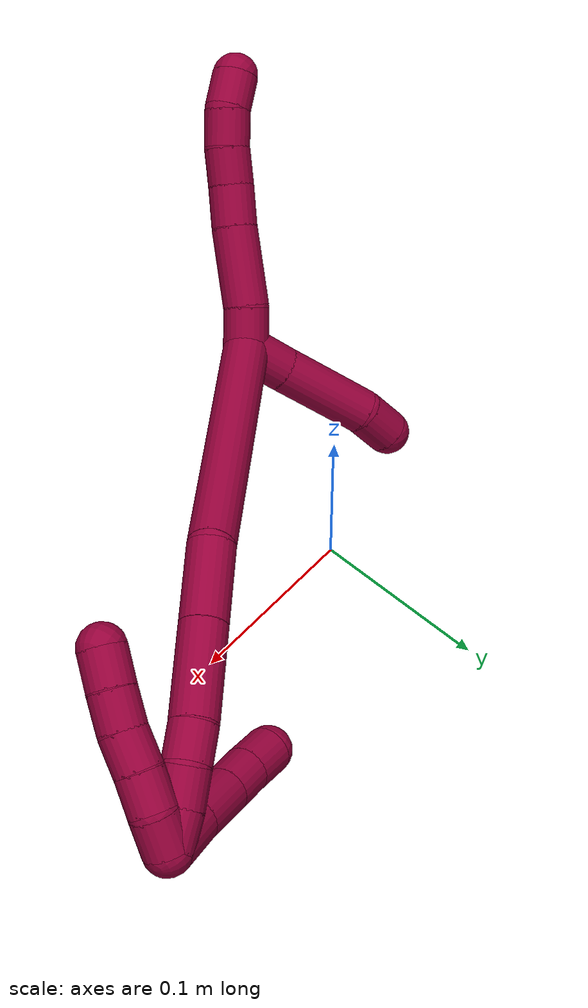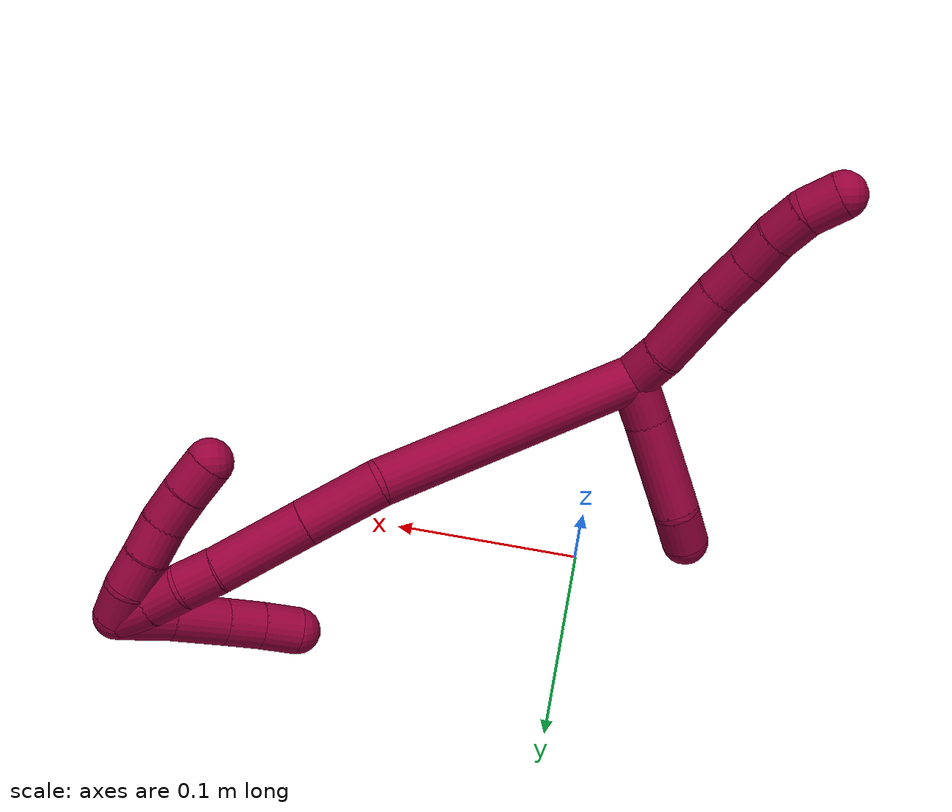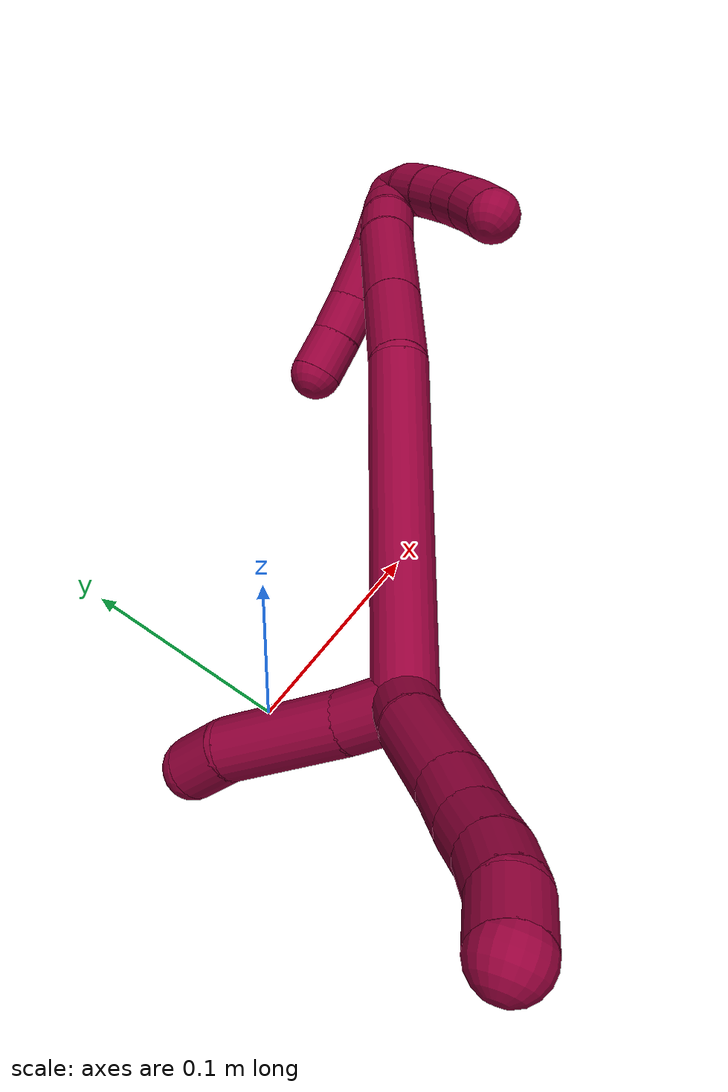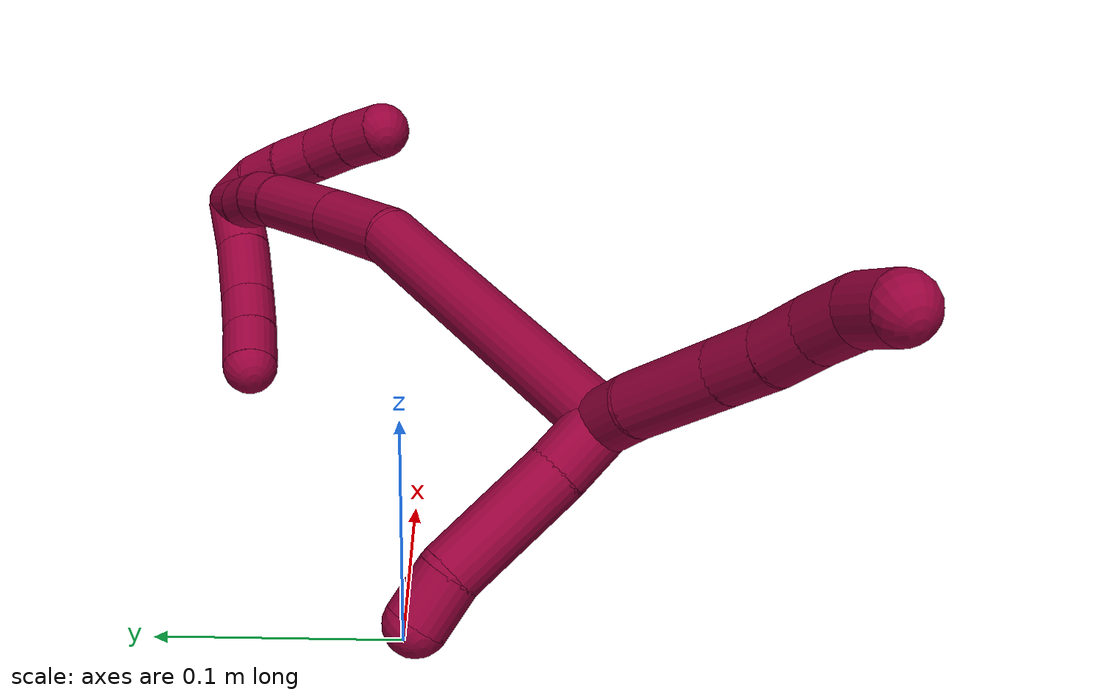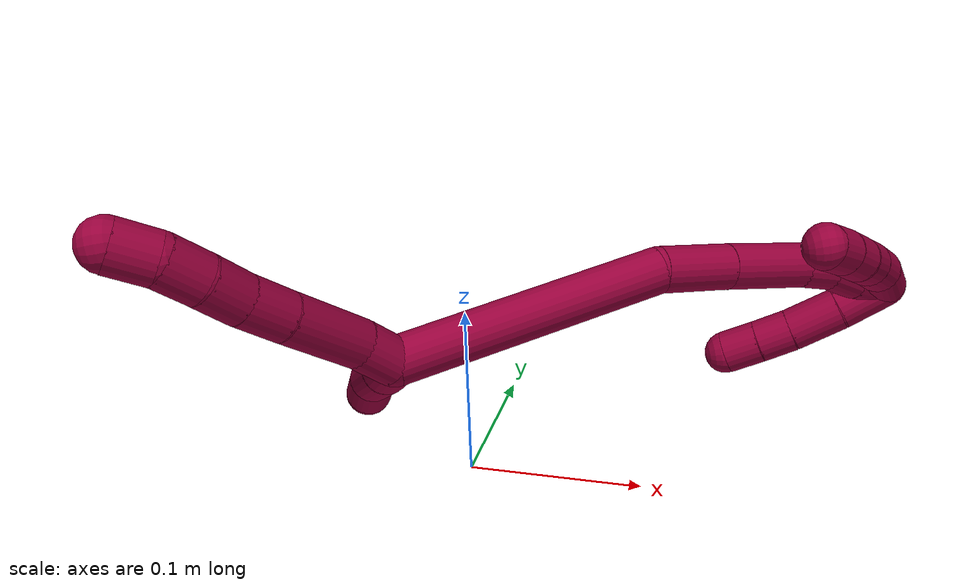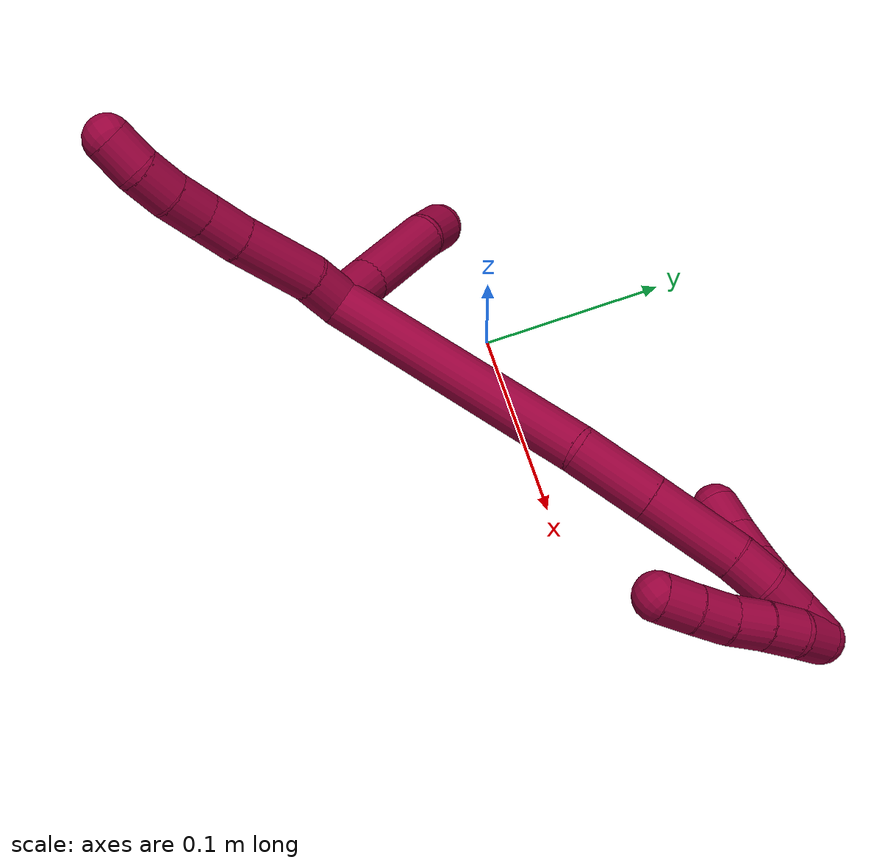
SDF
<sdf version="1.7">
 <world name="default">
  <model name="8">
   <static>0</static>
   <link name="8">
    <collision name="collision-cylinder-e_1_2_8">
     <pose>0.001063 -0.008929 0.006355 0.952268 0.096698 0.049896</pose>
     <geometry><cylinder><radius>0.0125</radius><length>0.022022</length></cylinder></geometry>
     <surface>
      <friction><ode><mu>1.16</mu><mu2>1.16</mu2><slip1>0</slip1><slip2>0</slip2></ode></friction>
      <contact><ode><kp>1e+06</kp><kd>1</kd><max_vel>0</max_vel><min_depth>0.001</min_depth></ode></contact>
     </surface>
    </collision>
    <visual name="visual-cylinder-e_1_2_8">
     <pose>0.001063 -0.008929 0.006355 0.952268 0.096698 0.049896</pose>
     <geometry><cylinder><radius>0.0125</radius><length>0.022022</length></cylinder></geometry>
     <material><ambient>0.584314 0 0.227451 1</ambient></material>
    </visual>
    <collision name="collision-cylinder-e_2_8_9">
     <pose>0.000674 -0.036049 0.024834 0.9829 -0.06634 -0.035518</pose>
     <geometry><cylinder><radius>0.0125</radius><length>0.043819</length></cylinder></geometry>
     <surface>
      <friction><ode><mu>1.16</mu><mu2>1.16</mu2><slip1>0</slip1><slip2>0</slip2></ode></friction>
      <contact><ode><kp>1e+06</kp><kd>1</kd><max_vel>0</max_vel><min_depth>0.001</min_depth></ode></contact>
     </surface>
    </collision>
    <visual name="visual-cylinder-e_2_8_9">
     <pose>0.000674 -0.036049 0.024834 0.9829 -0.06634 -0.035518</pose>
     <geometry><cylinder><radius>0.0125</radius><length>0.043819</length></cylinder></geometry>
     <material><ambient>0.584314 0 0.227451 1</ambient></material>
    </visual>
    <collision name="collision-cylinder-e_3_9_10">
     <pose>-0.000922 -0.063531 0.043638 0.947494 -0.012483 -0.0064</pose>
     <geometry><cylinder><radius>0.0125</radius><length>0.022886</length></cylinder></geometry>
     <surface>
      <friction><ode><mu>1.16</mu><mu2>1.16</mu2><slip1>0</slip1><slip2>0</slip2></ode></friction>
      <contact><ode><kp>1e+06</kp><kd>1</kd><max_vel>0</max_vel><min_depth>0.001</min_depth></ode></contact>
     </surface>
    </collision>
    <visual name="visual-cylinder-e_3_9_10">
     <pose>-0.000922 -0.063531 0.043638 0.947494 -0.012483 -0.0064</pose>
     <geometry><cylinder><radius>0.0125</radius><length>0.022886</length></cylinder></geometry>
     <material><ambient>0.584314 0 0.227451 1</ambient></material>
    </visual>
    <collision name="collision-cylinder-e_4_10_11">
     <pose>-0.000842 -0.081701 0.055603 1.03384 0.021559 0.012256</pose>
     <geometry><cylinder><radius>0.0125</radius><length>0.020673</length></cylinder></geometry>
     <surface>
      <friction><ode><mu>1.16</mu><mu2>1.16</mu2><slip1>0</slip1><slip2>0</slip2></ode></friction>
      <contact><ode><kp>1e+06</kp><kd>1</kd><max_vel>0</max_vel><min_depth>0.001</min_depth></ode></contact>
     </surface>
    </collision>
    <visual name="visual-cylinder-e_4_10_11">
     <pose>-0.000842 -0.081701 0.055603 1.03384 0.021559 0.012256</pose>
     <geometry><cylinder><radius>0.0125</radius><length>0.020673</length></cylinder></geometry>
     <material><ambient>0.584314 0 0.227451 1</ambient></material>
    </visual>
    <collision name="collision-cylinder-e_5_11_12">
     <pose>0.000266 -0.098712 0.067033 0.923654 0.086579 0.043113</pose>
     <geometry><cylinder><radius>0.0125</radius><length>0.020459</length></cylinder></geometry>
     <surface>
      <friction><ode><mu>1.16</mu><mu2>1.16</mu2><slip1>0</slip1><slip2>0</slip2></ode></friction>
      <contact><ode><kp>1e+06</kp><kd>1</kd><max_vel>0</max_vel><min_depth>0.001</min_depth></ode></contact>
     </surface>
    </collision>
    <visual name="visual-cylinder-e_5_11_12">
     <pose>0.000266 -0.098712 0.067033 0.923654 0.086579 0.043113</pose>
     <geometry><cylinder><radius>0.0125</radius><length>0.020459</length></cylinder></geometry>
     <material><ambient>0.584314 0 0.227451 1</ambient></material>
    </visual>
    <collision name="collision-cylinder-e_6_12_6">
     <pose>0.002228 -0.112728 0.081277 0.628422 0.107207 0.03487</pose>
     <geometry><cylinder><radius>0.0125</radius><length>0.020141</length></cylinder></geometry>
     <surface>
      <friction><ode><mu>1.16</mu><mu2>1.16</mu2><slip1>0</slip1><slip2>0</slip2></ode></friction>
      <contact><ode><kp>1e+06</kp><kd>1</kd><max_vel>0</max_vel><min_depth>0.001</min_depth></ode></contact>
     </surface>
    </collision>
    <visual name="visual-cylinder-e_6_12_6">
     <pose>0.002228 -0.112728 0.081277 0.628422 0.107207 0.03487</pose>
     <geometry><cylinder><radius>0.0125</radius><length>0.020141</length></cylinder></geometry>
     <material><ambient>0.584314 0 0.227451 1</ambient></material>
    </visual>
    <collision name="collision-cylinder-e_1_2_13">
     <pose>0.004751 0.010717 0.004364 -1.18406 0.389616 -0.263841</pose>
     <geometry><cylinder><radius>0.0125</radius><length>0.025017</length></cylinder></geometry>
     <surface>
      <friction><ode><mu>1.16</mu><mu2>1.16</mu2><slip1>0</slip1><slip2>0</slip2></ode></friction>
      <contact><ode><kp>1e+06</kp><kd>1</kd><max_vel>0</max_vel><min_depth>0.001</min_depth></ode></contact>
     </surface>
    </collision>
    <visual name="visual-cylinder-e_1_2_13">
     <pose>0.004751 0.010717 0.004364 -1.18406 0.389616 -0.263841</pose>
     <geometry><cylinder><radius>0.0125</radius><length>0.025017</length></cylinder></geometry>
     <material><ambient>0.584314 0 0.227451 1</ambient></material>
    </visual>
    <collision name="collision-cylinder-e_2_13_14">
     <pose>0.021292 0.043701 0.017246 -1.20549 0.459226 -0.318968</pose>
     <geometry><cylinder><radius>0.0125</radius><length>0.053194</length></cylinder></geometry>
     <surface>
      <friction><ode><mu>1.16</mu><mu2>1.16</mu2><slip1>0</slip1><slip2>0</slip2></ode></friction>
      <contact><ode><kp>1e+06</kp><kd>1</kd><max_vel>0</max_vel><min_depth>0.001</min_depth></ode></contact>
     </surface>
    </collision>
    <visual name="visual-cylinder-e_2_13_14">
     <pose>0.021292 0.043701 0.017246 -1.20549 0.459226 -0.318968</pose>
     <geometry><cylinder><radius>0.0125</radius><length>0.053194</length></cylinder></geometry>
     <material><ambient>0.584314 0 0.227451 1</ambient></material>
    </visual>
    <collision name="collision-cylinder-e_3_14_5">
     <pose>0.035 0.076056 0.029406 -1.22412 0.177049 -0.124452</pose>
     <geometry><cylinder><radius>0.0125</radius><length>0.021789</length></cylinder></geometry>
     <surface>
      <friction><ode><mu>1.16</mu><mu2>1.16</mu2><slip1>0</slip1><slip2>0</slip2></ode></friction>
      <contact><ode><kp>1e+06</kp><kd>1</kd><max_vel>0</max_vel><min_depth>0.001</min_depth></ode></contact>
     </surface>
    </collision>
    <visual name="visual-cylinder-e_3_14_5">
     <pose>0.035 0.076056 0.029406 -1.22412 0.177049 -0.124452</pose>
     <geometry><cylinder><radius>0.0125</radius><length>0.021789</length></cylinder></geometry>
     <material><ambient>0.584314 0 0.227451 1</ambient></material>
    </visual>
    <collision name="collision-cylinder-e_1_2_15">
     <pose>0.021501 0.012445 -0.06887 -2.96282 0.298068 -2.06531</pose>
     <geometry><cylinder><radius>0.0125</radius><length>0.146427</length></cylinder></geometry>
     <surface>
      <friction><ode><mu>1.16</mu><mu2>1.16</mu2><slip1>0</slip1><slip2>0</slip2></ode></friction>
      <contact><ode><kp>1e+06</kp><kd>1</kd><max_vel>0</max_vel><min_depth>0.001</min_depth></ode></contact>
     </surface>
    </collision>
    <visual name="visual-cylinder-e_1_2_15">
     <pose>0.021501 0.012445 -0.06887 -2.96282 0.298068 -2.06531</pose>
     <geometry><cylinder><radius>0.0125</radius><length>0.146427</length></cylinder></geometry>
     <material><ambient>0.584314 0 0.227451 1</ambient></material>
    </visual>
    <collision name="collision-cylinder-e_2_15_16">
     <pose>0.046596 0.034183 -0.156584 -2.68341 0.169407 -0.698382</pose>
     <geometry><cylinder><radius>0.0125</radius><length>0.042633</length></cylinder></geometry>
     <surface>
      <friction><ode><mu>1.16</mu><mu2>1.16</mu2><slip1>0</slip1><slip2>0</slip2></ode></friction>
      <contact><ode><kp>1e+06</kp><kd>1</kd><max_vel>0</max_vel><min_depth>0.001</min_depth></ode></contact>
     </surface>
    </collision>
    <visual name="visual-cylinder-e_2_15_16">
     <pose>0.046596 0.034183 -0.156584 -2.68341 0.169407 -0.698382</pose>
     <geometry><cylinder><radius>0.0125</radius><length>0.042633</length></cylinder></geometry>
     <material><ambient>0.584314 0 0.227451 1</ambient></material>
    </visual>
    <collision name="collision-cylinder-e_3_16_17">
     <pose>0.05407 0.054889 -0.197502 -2.66445 0.154925 -0.617863</pose>
     <geometry><cylinder><radius>0.0125</radius><length>0.050301</length></cylinder></geometry>
     <surface>
      <friction><ode><mu>1.16</mu><mu2>1.16</mu2><slip1>0</slip1><slip2>0</slip2></ode></friction>
      <contact><ode><kp>1e+06</kp><kd>1</kd><max_vel>0</max_vel><min_depth>0.001</min_depth></ode></contact>
     </surface>
    </collision>
    <visual name="visual-cylinder-e_3_16_17">
     <pose>0.05407 0.054889 -0.197502 -2.66445 0.154925 -0.617863</pose>
     <geometry><cylinder><radius>0.0125</radius><length>0.050301</length></cylinder></geometry>
     <material><ambient>0.584314 0 0.227451 1</ambient></material>
    </visual>
    <collision name="collision-cylinder-e_4_17_18">
     <pose>0.05844 0.071165 -0.228535 -2.6442 0.047933 -0.188223</pose>
     <geometry><cylinder><radius>0.0125</radius><length>0.020411</length></cylinder></geometry>
     <surface>
      <friction><ode><mu>1.16</mu><mu2>1.16</mu2><slip1>0</slip1><slip2>0</slip2></ode></friction>
      <contact><ode><kp>1e+06</kp><kd>1</kd><max_vel>0</max_vel><min_depth>0.001</min_depth></ode></contact>
     </surface>
    </collision>
    <visual name="visual-cylinder-e_4_17_18">
     <pose>0.05844 0.071165 -0.228535 -2.6442 0.047933 -0.188223</pose>
     <geometry><cylinder><radius>0.0125</radius><length>0.020411</length></cylinder></geometry>
     <material><ambient>0.584314 0 0.227451 1</ambient></material>
    </visual>
    <collision name="collision-cylinder-e_5_18_19">
     <pose>0.058094 0.08223 -0.245391 -2.47599 -0.083008 0.239135</pose>
     <geometry><cylinder><radius>0.0125</radius><length>0.020152</length></cylinder></geometry>
     <surface>
      <friction><ode><mu>1.16</mu><mu2>1.16</mu2><slip1>0</slip1><slip2>0</slip2></ode></friction>
      <contact><ode><kp>1e+06</kp><kd>1</kd><max_vel>0</max_vel><min_depth>0.001</min_depth></ode></contact>
     </surface>
    </collision>
    <visual name="visual-cylinder-e_5_18_19">
     <pose>0.058094 0.08223 -0.245391 -2.47599 -0.083008 0.239135</pose>
     <geometry><cylinder><radius>0.0125</radius><length>0.020152</length></cylinder></geometry>
     <material><ambient>0.584314 0 0.227451 1</ambient></material>
    </visual>
    <collision name="collision-cylinder-e_6_19_1">
     <pose>0.056268 0.093486 -0.261904 -2.61093 -0.098886 0.360251</pose>
     <geometry><cylinder><radius>0.0125</radius><length>0.020075</length></cylinder></geometry>
     <surface>
      <friction><ode><mu>1.16</mu><mu2>1.16</mu2><slip1>0</slip1><slip2>0</slip2></ode></friction>
      <contact><ode><kp>1e+06</kp><kd>1</kd><max_vel>0</max_vel><min_depth>0.001</min_depth></ode></contact>
     </surface>
    </collision>
    <visual name="visual-cylinder-e_6_19_1">
     <pose>0.056268 0.093486 -0.261904 -2.61093 -0.098886 0.360251</pose>
     <geometry><cylinder><radius>0.0125</radius><length>0.020075</length></cylinder></geometry>
     <material><ambient>0.584314 0 0.227451 1</ambient></material>
    </visual>
    <collision name="collision-cylinder-e_1_1_20">
     <pose>0.054431 0.089047 -0.267495 1.26248 -0.084667 -0.06191</pose>
     <geometry><cylinder><radius>0.0125</radius><length>0.02</length></cylinder></geometry>
     <surface>
      <friction><ode><mu>1.16</mu><mu2>1.16</mu2><slip1>0</slip1><slip2>0</slip2></ode></friction>
      <contact><ode><kp>1e+06</kp><kd>1</kd><max_vel>0</max_vel><min_depth>0.001</min_depth></ode></contact>
     </surface>
    </collision>
    <visual name="visual-cylinder-e_1_1_20">
     <pose>0.054431 0.089047 -0.267495 1.26248 -0.084667 -0.06191</pose>
     <geometry><cylinder><radius>0.0125</radius><length>0.02</length></cylinder></geometry>
     <material><ambient>0.584314 0 0.227451 1</ambient></material>
    </visual>
    <collision name="collision-cylinder-e_2_20_21">
     <pose>0.051032 0.071123 -0.259736 1.05887 -0.258192 -0.151637</pose>
     <geometry><cylinder><radius>0.0125</radius><length>0.02</length></cylinder></geometry>
     <surface>
      <friction><ode><mu>1.16</mu><mu2>1.16</mu2><slip1>0</slip1><slip2>0</slip2></ode></friction>
      <contact><ode><kp>1e+06</kp><kd>1</kd><max_vel>0</max_vel><min_depth>0.001</min_depth></ode></contact>
     </surface>
    </collision>
    <visual name="visual-cylinder-e_2_20_21">
     <pose>0.051032 0.071123 -0.259736 1.05887 -0.258192 -0.151637</pose>
     <geometry><cylinder><radius>0.0125</radius><length>0.02</length></cylinder></geometry>
     <material><ambient>0.584314 0 0.227451 1</ambient></material>
    </visual>
    <collision name="collision-cylinder-e_3_21_22">
     <pose>0.045174 0.054531 -0.250262 1.04496 -0.336815 -0.19519</pose>
     <geometry><cylinder><radius>0.0125</radius><length>0.02</length></cylinder></geometry>
     <surface>
      <friction><ode><mu>1.16</mu><mu2>1.16</mu2><slip1>0</slip1><slip2>0</slip2></ode></friction>
      <contact><ode><kp>1e+06</kp><kd>1</kd><max_vel>0</max_vel><min_depth>0.001</min_depth></ode></contact>
     </surface>
    </collision>
    <visual name="visual-cylinder-e_3_21_22">
     <pose>0.045174 0.054531 -0.250262 1.04496 -0.336815 -0.19519</pose>
     <geometry><cylinder><radius>0.0125</radius><length>0.02</length></cylinder></geometry>
     <material><ambient>0.584314 0 0.227451 1</ambient></material>
    </visual>
    <collision name="collision-cylinder-e_4_22_23">
     <pose>0.039559 0.038342 -0.240026 0.970164 -0.233064 -0.123248</pose>
     <geometry><cylinder><radius>0.0125</radius><length>0.02</length></cylinder></geometry>
     <surface>
      <friction><ode><mu>1.16</mu><mu2>1.16</mu2><slip1>0</slip1><slip2>0</slip2></ode></friction>
      <contact><ode><kp>1e+06</kp><kd>1</kd><max_vel>0</max_vel><min_depth>0.001</min_depth></ode></contact>
     </surface>
    </collision>
    <visual name="visual-cylinder-e_4_22_23">
     <pose>0.039559 0.038342 -0.240026 0.970164 -0.233064 -0.123248</pose>
     <geometry><cylinder><radius>0.0125</radius><length>0.02</length></cylinder></geometry>
     <material><ambient>0.584314 0 0.227451 1</ambient></material>
    </visual>
    <collision name="collision-cylinder-e_5_23_4">
     <pose>0.034785 0.022706 -0.228525 0.902937 -0.249073 -0.121247</pose>
     <geometry><cylinder><radius>0.0125</radius><length>0.02</length></cylinder></geometry>
     <surface>
      <friction><ode><mu>1.16</mu><mu2>1.16</mu2><slip1>0</slip1><slip2>0</slip2></ode></friction>
      <contact><ode><kp>1e+06</kp><kd>1</kd><max_vel>0</max_vel><min_depth>0.001</min_depth></ode></contact>
     </surface>
    </collision>
    <visual name="visual-cylinder-e_5_23_4">
     <pose>0.034785 0.022706 -0.228525 0.902937 -0.249073 -0.121247</pose>
     <geometry><cylinder><radius>0.0125</radius><length>0.02</length></cylinder></geometry>
     <material><ambient>0.584314 0 0.227451 1</ambient></material>
    </visual>
    <collision name="collision-cylinder-e_1_1_24">
     <pose>0.052737 0.102896 -0.256903 -0.309573 -0.175803 0.0275</pose>
     <geometry><cylinder><radius>0.0125</radius><length>0.029039</length></cylinder></geometry>
     <surface>
      <friction><ode><mu>1.16</mu><mu2>1.16</mu2><slip1>0</slip1><slip2>0</slip2></ode></friction>
      <contact><ode><kp>1e+06</kp><kd>1</kd><max_vel>0</max_vel><min_depth>0.001</min_depth></ode></contact>
     </surface>
    </collision>
    <visual name="visual-cylinder-e_1_1_24">
     <pose>0.052737 0.102896 -0.256903 -0.309573 -0.175803 0.0275</pose>
     <geometry><cylinder><radius>0.0125</radius><length>0.029039</length></cylinder></geometry>
     <material><ambient>0.584314 0 0.227451 1</ambient></material>
    </visual>
    <collision name="collision-cylinder-e_2_24_25">
     <pose>0.048704 0.112034 -0.229019 -0.323407 -0.098942 0.016153</pose>
     <geometry><cylinder><radius>0.0125</radius><length>0.030246</length></cylinder></geometry>
     <surface>
      <friction><ode><mu>1.16</mu><mu2>1.16</mu2><slip1>0</slip1><slip2>0</slip2></ode></friction>
      <contact><ode><kp>1e+06</kp><kd>1</kd><max_vel>0</max_vel><min_depth>0.001</min_depth></ode></contact>
     </surface>
    </collision>
    <visual name="visual-cylinder-e_2_24_25">
     <pose>0.048704 0.112034 -0.229019 -0.323407 -0.098942 0.016153</pose>
     <geometry><cylinder><radius>0.0125</radius><length>0.030246</length></cylinder></geometry>
     <material><ambient>0.584314 0 0.227451 1</ambient></material>
    </visual>
    <collision name="collision-cylinder-e_3_25_26">
     <pose>0.046828 0.1195 -0.205083 -0.270829 -0.038023 0.005181</pose>
     <geometry><cylinder><radius>0.0125</radius><length>0.020079</length></cylinder></geometry>
     <surface>
      <friction><ode><mu>1.16</mu><mu2>1.16</mu2><slip1>0</slip1><slip2>0</slip2></ode></friction>
      <contact><ode><kp>1e+06</kp><kd>1</kd><max_vel>0</max_vel><min_depth>0.001</min_depth></ode></contact>
     </surface>
    </collision>
    <visual name="visual-cylinder-e_3_25_26">
     <pose>0.046828 0.1195 -0.205083 -0.270829 -0.038023 0.005181</pose>
     <geometry><cylinder><radius>0.0125</radius><length>0.020079</length></cylinder></geometry>
     <material><ambient>0.584314 0 0.227451 1</ambient></material>
    </visual>
    <collision name="collision-cylinder-e_4_26_3">
     <pose>0.046483 0.125094 -0.185517 -0.285866 0.003482 -0.000501</pose>
     <geometry><cylinder><radius>0.0125</radius><length>0.020636</length></cylinder></geometry>
     <surface>
      <friction><ode><mu>1.16</mu><mu2>1.16</mu2><slip1>0</slip1><slip2>0</slip2></ode></friction>
      <contact><ode><kp>1e+06</kp><kd>1</kd><max_vel>0</max_vel><min_depth>0.001</min_depth></ode></contact>
     </surface>
    </collision>
    <visual name="visual-cylinder-e_4_26_3">
     <pose>0.046483 0.125094 -0.185517 -0.285866 0.003482 -0.000501</pose>
     <geometry><cylinder><radius>0.0125</radius><length>0.020636</length></cylinder></geometry>
     <material><ambient>0.584314 0 0.227451 1</ambient></material>
    </visual>
    <collision name="collision-sphere-3">
     <pose>0.046519 0.128004 -0.175618 0 -0 0</pose>
     <geometry><sphere><radius>0.0125</radius></sphere></geometry>
     <surface>
      <friction><ode><mu>1.16</mu><mu2>1.16</mu2><slip1>0</slip1><slip2>0</slip2></ode></friction>
      <contact><ode><kp>1e+06</kp><kd>1</kd><max_vel>0</max_vel><min_depth>0.001</min_depth></ode></contact>
     </surface>
    </collision>
    <visual name="visual-sphere-3">
     <pose>0.046519 0.128004 -0.175618 0 -0 0</pose>
     <geometry><sphere><radius>0.0125</radius></sphere></geometry>
     <material><ambient>0.584314 0 0.227451 1</ambient></material>
    </visual>
    <collision name="collision-sphere-26">
     <pose>0.046447 0.122184 -0.195416 0 -0 0</pose>
     <geometry><sphere><radius>0.0125</radius></sphere></geometry>
     <surface>
      <friction><ode><mu>1.16</mu><mu2>1.16</mu2><slip1>0</slip1><slip2>0</slip2></ode></friction>
      <contact><ode><kp>1e+06</kp><kd>1</kd><max_vel>0</max_vel><min_depth>0.001</min_depth></ode></contact>
     </surface>
    </collision>
    <visual name="visual-sphere-26">
     <pose>0.046447 0.122184 -0.195416 0 -0 0</pose>
     <geometry><sphere><radius>0.0125</radius></sphere></geometry>
     <material><ambient>0.584314 0 0.227451 1</ambient></material>
    </visual>
    <collision name="collision-sphere-25">
     <pose>0.04721 0.116816 -0.21475 0 -0 0</pose>
     <geometry><sphere><radius>0.0125</radius></sphere></geometry>
     <surface>
      <friction><ode><mu>1.16</mu><mu2>1.16</mu2><slip1>0</slip1><slip2>0</slip2></ode></friction>
      <contact><ode><kp>1e+06</kp><kd>1</kd><max_vel>0</max_vel><min_depth>0.001</min_depth></ode></contact>
     </surface>
    </collision>
    <visual name="visual-sphere-25">
     <pose>0.04721 0.116816 -0.21475 0 -0 0</pose>
     <geometry><sphere><radius>0.0125</radius></sphere></geometry>
     <material><ambient>0.584314 0 0.227451 1</ambient></material>
    </visual>
    <collision name="collision-sphere-24">
     <pose>0.050198 0.107251 -0.243287 0 -0 0</pose>
     <geometry><sphere><radius>0.0125</radius></sphere></geometry>
     <surface>
      <friction><ode><mu>1.16</mu><mu2>1.16</mu2><slip1>0</slip1><slip2>0</slip2></ode></friction>
      <contact><ode><kp>1e+06</kp><kd>1</kd><max_vel>0</max_vel><min_depth>0.001</min_depth></ode></contact>
     </surface>
    </collision>
    <visual name="visual-sphere-24">
     <pose>0.050198 0.107251 -0.243287 0 -0 0</pose>
     <geometry><sphere><radius>0.0125</radius></sphere></geometry>
     <material><ambient>0.584314 0 0.227451 1</ambient></material>
    </visual>
    <collision name="collision-sphere-4">
     <pose>0.03232 0.015096 -0.222523 0 -0 0</pose>
     <geometry><sphere><radius>0.0125</radius></sphere></geometry>
     <surface>
      <friction><ode><mu>1.16</mu><mu2>1.16</mu2><slip1>0</slip1><slip2>0</slip2></ode></friction>
      <contact><ode><kp>1e+06</kp><kd>1</kd><max_vel>0</max_vel><min_depth>0.001</min_depth></ode></contact>
     </surface>
    </collision>
    <visual name="visual-sphere-4">
     <pose>0.03232 0.015096 -0.222523 0 -0 0</pose>
     <geometry><sphere><radius>0.0125</radius></sphere></geometry>
     <material><ambient>0.584314 0 0.227451 1</ambient></material>
    </visual>
    <collision name="collision-sphere-23">
     <pose>0.03725 0.030315 -0.234527 0 -0 0</pose>
     <geometry><sphere><radius>0.0125</radius></sphere></geometry>
     <surface>
      <friction><ode><mu>1.16</mu><mu2>1.16</mu2><slip1>0</slip1><slip2>0</slip2></ode></friction>
      <contact><ode><kp>1e+06</kp><kd>1</kd><max_vel>0</max_vel><min_depth>0.001</min_depth></ode></contact>
     </surface>
    </collision>
    <visual name="visual-sphere-23">
     <pose>0.03725 0.030315 -0.234527 0 -0 0</pose>
     <geometry><sphere><radius>0.0125</radius></sphere></geometry>
     <material><ambient>0.584314 0 0.227451 1</ambient></material>
    </visual>
    <collision name="collision-sphere-22">
     <pose>0.041869 0.046368 -0.245525 0 -0 0</pose>
     <geometry><sphere><radius>0.0125</radius></sphere></geometry>
     <surface>
      <friction><ode><mu>1.16</mu><mu2>1.16</mu2><slip1>0</slip1><slip2>0</slip2></ode></friction>
      <contact><ode><kp>1e+06</kp><kd>1</kd><max_vel>0</max_vel><min_depth>0.001</min_depth></ode></contact>
     </surface>
    </collision>
    <visual name="visual-sphere-22">
     <pose>0.041869 0.046368 -0.245525 0 -0 0</pose>
     <geometry><sphere><radius>0.0125</radius></sphere></geometry>
     <material><ambient>0.584314 0 0.227451 1</ambient></material>
    </visual>
    <collision name="collision-sphere-21">
     <pose>0.048479 0.062694 -0.254999 0 -0 0</pose>
     <geometry><sphere><radius>0.0125</radius></sphere></geometry>
     <surface>
      <friction><ode><mu>1.16</mu><mu2>1.16</mu2><slip1>0</slip1><slip2>0</slip2></ode></friction>
      <contact><ode><kp>1e+06</kp><kd>1</kd><max_vel>0</max_vel><min_depth>0.001</min_depth></ode></contact>
     </surface>
    </collision>
    <visual name="visual-sphere-21">
     <pose>0.048479 0.062694 -0.254999 0 -0 0</pose>
     <geometry><sphere><radius>0.0125</radius></sphere></geometry>
     <material><ambient>0.584314 0 0.227451 1</ambient></material>
    </visual>
    <collision name="collision-sphere-20">
     <pose>0.053585 0.079553 -0.264472 0 -0 0</pose>
     <geometry><sphere><radius>0.0125</radius></sphere></geometry>
     <surface>
      <friction><ode><mu>1.16</mu><mu2>1.16</mu2><slip1>0</slip1><slip2>0</slip2></ode></friction>
      <contact><ode><kp>1e+06</kp><kd>1</kd><max_vel>0</max_vel><min_depth>0.001</min_depth></ode></contact>
     </surface>
    </collision>
    <visual name="visual-sphere-20">
     <pose>0.053585 0.079553 -0.264472 0 -0 0</pose>
     <geometry><sphere><radius>0.0125</radius></sphere></geometry>
     <material><ambient>0.584314 0 0.227451 1</ambient></material>
    </visual>
    <collision name="collision-sphere-12">
     <pose>0.00115 -0.106842 0.073178 0 -0 0</pose>
     <geometry><sphere><radius>0.0125</radius></sphere></geometry>
     <surface>
      <friction><ode><mu>1.16</mu><mu2>1.16</mu2><slip1>0</slip1><slip2>0</slip2></ode></friction>
      <contact><ode><kp>1e+06</kp><kd>1</kd><max_vel>0</max_vel><min_depth>0.001</min_depth></ode></contact>
     </surface>
    </collision>
    <visual name="visual-sphere-12">
     <pose>0.00115 -0.106842 0.073178 0 -0 0</pose>
     <geometry><sphere><radius>0.0125</radius></sphere></geometry>
     <material><ambient>0.584314 0 0.227451 1</ambient></material>
    </visual>
    <collision name="collision-sphere-11">
     <pose>-0.000619 -0.090581 0.060889 0 -0 0</pose>
     <geometry><sphere><radius>0.0125</radius></sphere></geometry>
     <surface>
      <friction><ode><mu>1.16</mu><mu2>1.16</mu2><slip1>0</slip1><slip2>0</slip2></ode></friction>
      <contact><ode><kp>1e+06</kp><kd>1</kd><max_vel>0</max_vel><min_depth>0.001</min_depth></ode></contact>
     </surface>
    </collision>
    <visual name="visual-sphere-11">
     <pose>-0.000619 -0.090581 0.060889 0 -0 0</pose>
     <geometry><sphere><radius>0.0125</radius></sphere></geometry>
     <material><ambient>0.584314 0 0.227451 1</ambient></material>
    </visual>
    <collision name="collision-sphere-10">
     <pose>-0.001064 -0.072821 0.050316 0 -0 0</pose>
     <geometry><sphere><radius>0.0125</radius></sphere></geometry>
     <surface>
      <friction><ode><mu>1.16</mu><mu2>1.16</mu2><slip1>0</slip1><slip2>0</slip2></ode></friction>
      <contact><ode><kp>1e+06</kp><kd>1</kd><max_vel>0</max_vel><min_depth>0.001</min_depth></ode></contact>
     </surface>
    </collision>
    <visual name="visual-sphere-10">
     <pose>-0.001064 -0.072821 0.050316 0 -0 0</pose>
     <geometry><sphere><radius>0.0125</radius></sphere></geometry>
     <material><ambient>0.584314 0 0.227451 1</ambient></material>
    </visual>
    <collision name="collision-sphere-9">
     <pose>-0.000779 -0.05424 0.036959 0 -0 0</pose>
     <geometry><sphere><radius>0.0125</radius></sphere></geometry>
     <surface>
      <friction><ode><mu>1.16</mu><mu2>1.16</mu2><slip1>0</slip1><slip2>0</slip2></ode></friction>
      <contact><ode><kp>1e+06</kp><kd>1</kd><max_vel>0</max_vel><min_depth>0.001</min_depth></ode></contact>
     </surface>
    </collision>
    <visual name="visual-sphere-9">
     <pose>-0.000779 -0.05424 0.036959 0 -0 0</pose>
     <geometry><sphere><radius>0.0125</radius></sphere></geometry>
     <material><ambient>0.584314 0 0.227451 1</ambient></material>
    </visual>
    <collision name="collision-sphere-2">
     <geometry><sphere><radius>0.0125</radius></sphere></geometry>
     <surface>
      <friction><ode><mu>1.16</mu><mu2>1.16</mu2><slip1>0</slip1><slip2>0</slip2></ode></friction>
      <contact><ode><kp>1e+06</kp><kd>1</kd><max_vel>0</max_vel><min_depth>0.001</min_depth></ode></contact>
     </surface>
    </collision>
    <visual name="visual-sphere-2">
     <geometry><sphere><radius>0.0125</radius></sphere></geometry>
     <material><ambient>0.584314 0 0.227451 1</ambient></material>
    </visual>
    <collision name="collision-sphere-19">
     <pose>0.057258 0.088431 -0.25329 0 -0 0</pose>
     <geometry><sphere><radius>0.0125</radius></sphere></geometry>
     <surface>
      <friction><ode><mu>1.16</mu><mu2>1.16</mu2><slip1>0</slip1><slip2>0</slip2></ode></friction>
      <contact><ode><kp>1e+06</kp><kd>1</kd><max_vel>0</max_vel><min_depth>0.001</min_depth></ode></contact>
     </surface>
    </collision>
    <visual name="visual-sphere-19">
     <pose>0.057258 0.088431 -0.25329 0 -0 0</pose>
     <geometry><sphere><radius>0.0125</radius></sphere></geometry>
     <material><ambient>0.584314 0 0.227451 1</ambient></material>
    </visual>
    <collision name="collision-sphere-8">
     <pose>0.002126 -0.017858 0.012709 0 -0 0</pose>
     <geometry><sphere><radius>0.0125</radius></sphere></geometry>
     <surface>
      <friction><ode><mu>1.16</mu><mu2>1.16</mu2><slip1>0</slip1><slip2>0</slip2></ode></friction>
      <contact><ode><kp>1e+06</kp><kd>1</kd><max_vel>0</max_vel><min_depth>0.001</min_depth></ode></contact>
     </surface>
    </collision>
    <visual name="visual-sphere-8">
     <pose>0.002126 -0.017858 0.012709 0 -0 0</pose>
     <geometry><sphere><radius>0.0125</radius></sphere></geometry>
     <material><ambient>0.584314 0 0.227451 1</ambient></material>
    </visual>
    <collision name="collision-sphere-6">
     <pose>0.003306 -0.118614 0.089377 0 -0 0</pose>
     <geometry><sphere><radius>0.0125</radius></sphere></geometry>
     <surface>
      <friction><ode><mu>1.16</mu><mu2>1.16</mu2><slip1>0</slip1><slip2>0</slip2></ode></friction>
      <contact><ode><kp>1e+06</kp><kd>1</kd><max_vel>0</max_vel><min_depth>0.001</min_depth></ode></contact>
     </surface>
    </collision>
    <visual name="visual-sphere-6">
     <pose>0.003306 -0.118614 0.089377 0 -0 0</pose>
     <geometry><sphere><radius>0.0125</radius></sphere></geometry>
     <material><ambient>0.584314 0 0.227451 1</ambient></material>
    </visual>
    <collision name="collision-sphere-13">
     <pose>0.009502 0.021433 0.008729 0 -0 0</pose>
     <geometry><sphere><radius>0.0125</radius></sphere></geometry>
     <surface>
      <friction><ode><mu>1.16</mu><mu2>1.16</mu2><slip1>0</slip1><slip2>0</slip2></ode></friction>
      <contact><ode><kp>1e+06</kp><kd>1</kd><max_vel>0</max_vel><min_depth>0.001</min_depth></ode></contact>
     </surface>
    </collision>
    <visual name="visual-sphere-13">
     <pose>0.009502 0.021433 0.008729 0 -0 0</pose>
     <geometry><sphere><radius>0.0125</radius></sphere></geometry>
     <material><ambient>0.584314 0 0.227451 1</ambient></material>
    </visual>
    <collision name="collision-sphere-14">
     <pose>0.033081 0.065969 0.025763 0 -0 0</pose>
     <geometry><sphere><radius>0.0125</radius></sphere></geometry>
     <surface>
      <friction><ode><mu>1.16</mu><mu2>1.16</mu2><slip1>0</slip1><slip2>0</slip2></ode></friction>
      <contact><ode><kp>1e+06</kp><kd>1</kd><max_vel>0</max_vel><min_depth>0.001</min_depth></ode></contact>
     </surface>
    </collision>
    <visual name="visual-sphere-14">
     <pose>0.033081 0.065969 0.025763 0 -0 0</pose>
     <geometry><sphere><radius>0.0125</radius></sphere></geometry>
     <material><ambient>0.584314 0 0.227451 1</ambient></material>
    </visual>
    <collision name="collision-sphere-5">
     <pose>0.036918 0.086142 0.03305 0 -0 0</pose>
     <geometry><sphere><radius>0.0125</radius></sphere></geometry>
     <surface>
      <friction><ode><mu>1.16</mu><mu2>1.16</mu2><slip1>0</slip1><slip2>0</slip2></ode></friction>
      <contact><ode><kp>1e+06</kp><kd>1</kd><max_vel>0</max_vel><min_depth>0.001</min_depth></ode></contact>
     </surface>
    </collision>
    <visual name="visual-sphere-5">
     <pose>0.036918 0.086142 0.03305 0 -0 0</pose>
     <geometry><sphere><radius>0.0125</radius></sphere></geometry>
     <material><ambient>0.584314 0 0.227451 1</ambient></material>
    </visual>
    <collision name="collision-sphere-15">
     <pose>0.043002 0.024889 -0.137739 0 -0 0</pose>
     <geometry><sphere><radius>0.0125</radius></sphere></geometry>
     <surface>
      <friction><ode><mu>1.16</mu><mu2>1.16</mu2><slip1>0</slip1><slip2>0</slip2></ode></friction>
      <contact><ode><kp>1e+06</kp><kd>1</kd><max_vel>0</max_vel><min_depth>0.001</min_depth></ode></contact>
     </surface>
    </collision>
    <visual name="visual-sphere-15">
     <pose>0.043002 0.024889 -0.137739 0 -0 0</pose>
     <geometry><sphere><radius>0.0125</radius></sphere></geometry>
     <material><ambient>0.584314 0 0.227451 1</ambient></material>
    </visual>
    <collision name="collision-sphere-16">
     <pose>0.05019 0.043477 -0.175428 0 -0 0</pose>
     <geometry><sphere><radius>0.0125</radius></sphere></geometry>
     <surface>
      <friction><ode><mu>1.16</mu><mu2>1.16</mu2><slip1>0</slip1><slip2>0</slip2></ode></friction>
      <contact><ode><kp>1e+06</kp><kd>1</kd><max_vel>0</max_vel><min_depth>0.001</min_depth></ode></contact>
     </surface>
    </collision>
    <visual name="visual-sphere-16">
     <pose>0.05019 0.043477 -0.175428 0 -0 0</pose>
     <geometry><sphere><radius>0.0125</radius></sphere></geometry>
     <material><ambient>0.584314 0 0.227451 1</ambient></material>
    </visual>
    <collision name="collision-sphere-17">
     <pose>0.057951 0.066301 -0.219576 0 -0 0</pose>
     <geometry><sphere><radius>0.0125</radius></sphere></geometry>
     <surface>
      <friction><ode><mu>1.16</mu><mu2>1.16</mu2><slip1>0</slip1><slip2>0</slip2></ode></friction>
      <contact><ode><kp>1e+06</kp><kd>1</kd><max_vel>0</max_vel><min_depth>0.001</min_depth></ode></contact>
     </surface>
    </collision>
    <visual name="visual-sphere-17">
     <pose>0.057951 0.066301 -0.219576 0 -0 0</pose>
     <geometry><sphere><radius>0.0125</radius></sphere></geometry>
     <material><ambient>0.584314 0 0.227451 1</ambient></material>
    </visual>
    <collision name="collision-sphere-18">
     <pose>0.058929 0.076029 -0.237493 0 -0 0</pose>
     <geometry><sphere><radius>0.0125</radius></sphere></geometry>
     <surface>
      <friction><ode><mu>1.16</mu><mu2>1.16</mu2><slip1>0</slip1><slip2>0</slip2></ode></friction>
      <contact><ode><kp>1e+06</kp><kd>1</kd><max_vel>0</max_vel><min_depth>0.001</min_depth></ode></contact>
     </surface>
    </collision>
    <visual name="visual-sphere-18">
     <pose>0.058929 0.076029 -0.237493 0 -0 0</pose>
     <geometry><sphere><radius>0.0125</radius></sphere></geometry>
     <material><ambient>0.584314 0 0.227451 1</ambient></material>
    </visual>
    <collision name="collision-sphere-1">
     <pose>0.055277 0.098541 -0.270519 0 -0 0</pose>
     <geometry><sphere><radius>0.0125</radius></sphere></geometry>
     <surface>
      <friction><ode><mu>1.16</mu><mu2>1.16</mu2><slip1>0</slip1><slip2>0</slip2></ode></friction>
      <contact><ode><kp>1e+06</kp><kd>1</kd><max_vel>0</max_vel><min_depth>0.001</min_depth></ode></contact>
     </surface>
    </collision>
    <visual name="visual-sphere-1">
     <pose>0.055277 0.098541 -0.270519 0 -0 0</pose>
     <geometry><sphere><radius>0.0125</radius></sphere></geometry>
     <material><ambient>0.584314 0 0.227451 1</ambient></material>
    </visual>
    <inertial>
     <pose>0.03044 0.030587 -0.107686 0 -0 0</pose>
     <mass>0.75</mass>
     <inertia>
      <ixx>-0.000289</ixx>
      <ixy>0</ixy>
      <ixz>0</ixz>
      <iyy>-9e-05</iyy>
      <iyz>0</iyz>
      <izz>-0.000143</izz>
     </inertia>
    </inertial>
   </link>
   <pose>-0.013328 -0.074964 0.107745 -1.76047 -0.529013 1.9411</pose>
  </model>
 </world>
</sdf>
